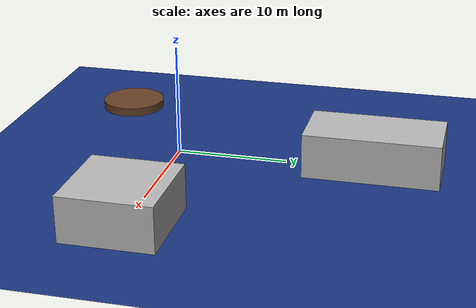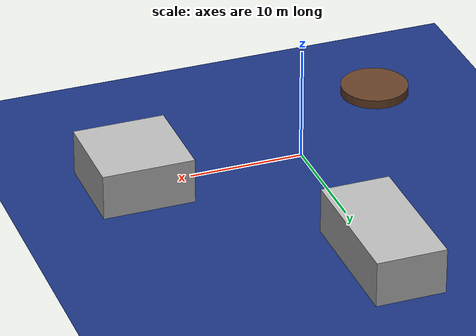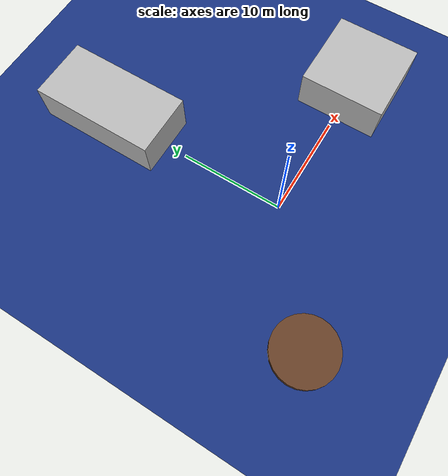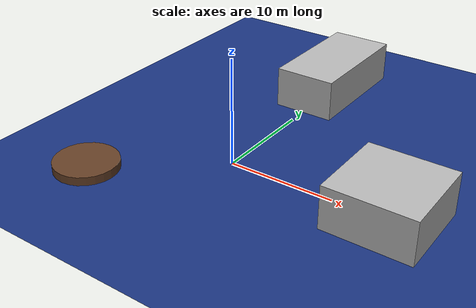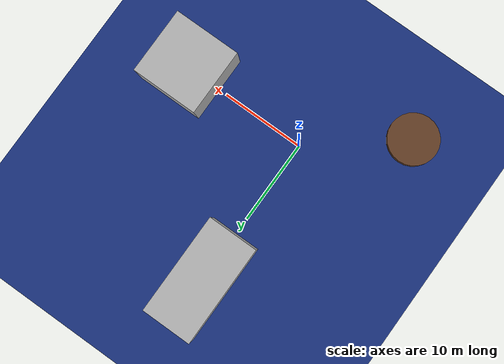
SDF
<?xml version="1.0" ?>
<sdf version="1.6">
  <world name="flood_city_world">
    <gravity>0 0 -9.81</gravity>

    <include>
      <uri>model://sun</uri>
    </include>

    <scene>
      <ambient>0.6 0.6 0.6 1</ambient>
      <background>0.4 0.6 0.8 1</background>
    </scene>

    <model name="water_surface">
      <static>true</static>
      <link name="link">
        <visual name="visual">
          <geometry>
            <plane>
              <normal>0 0 1</normal>
              <size>250 250</size>
            </plane>
          </geometry>
          <material>
            <ambient>0.1 0.2 0.4 0.85</ambient>
            <diffuse>0.1 0.2 0.5 0.85</diffuse>
          </material>
        </visual>
      </link>
    </model>

    <model name="flood_building_1">
      <static>true</static>
      <pose>15 0 2 0 0 0</pose>
      <link name="link">
        <collision name="collision">
          <geometry>
            <box>
              <size>8 8 4</size>
            </box>
          </geometry>
        </collision>
        <visual name="visual">
          <geometry>
            <box>
              <size>8 8 4</size>
            </box>
          </geometry>
        </visual>
      </link>
    </model>

    <model name="flood_building_2">
      <static>true</static>
      <pose>0 18 2 0 0 0</pose>
      <link name="link">
        <collision name="collision">
          <geometry>
            <box>
              <size>6 12 4</size>
            </box>
          </geometry>
        </collision>
        <visual name="visual">
          <geometry>
            <box>
              <size>6 12 4</size>
            </box>
          </geometry>
        </visual>
      </link>
    </model>

    <model name="debris_cluster">
      <static>true</static>
      <pose>-10 -8 0.4 0 0 0</pose>
      <link name="link">
        <collision name="collision">
          <geometry>
            <cylinder>
              <radius>3.0</radius>
              <length>0.8</length>
            </cylinder>
          </geometry>
        </collision>
        <visual name="visual">
          <geometry>
            <cylinder>
              <radius>3.0</radius>
              <length>0.8</length>
            </cylinder>
          </geometry>
          <material>
            <ambient>0.35 0.2 0.1 1</ambient>
            <diffuse>0.4 0.25 0.15 1</diffuse>
          </material>
        </visual>
      </link>
    </model>
  </world>
</sdf>
